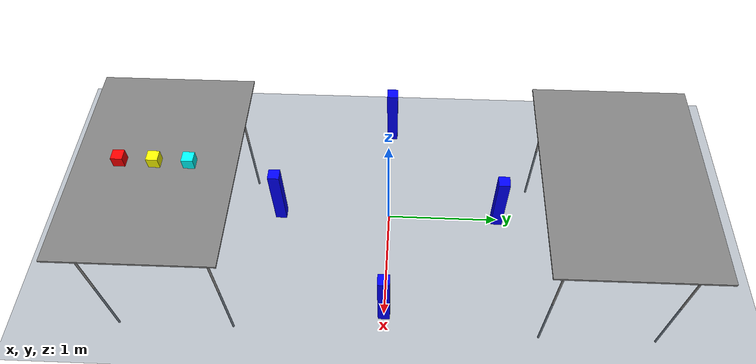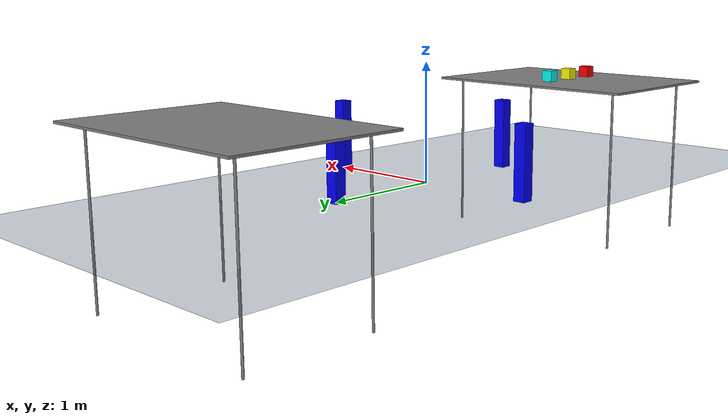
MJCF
<mujoco model="carryworld">
    <statistic center="0.3 0 0.4" extent="0.8"/>

    <visual>
        <headlight diffuse="0.6 0.6 0.6" ambient="0.1 0.1 0.1" specular="0 0 0"/>
        <rgba haze="0.15 0.25 0.35 1"/>
        <global azimuth="120" elevation="-20"/>
    </visual>

    <asset>
        <texture type="skybox" builtin="gradient" rgb1="0.3 0.5 0.7" rgb2="0 0 0" width="512" height="3072"/>
        <texture type="2d" name="groundplane" builtin="checker" mark="edge" rgb1="0.2 0.3 0.4" rgb2="0.1 0.2 0.3"
                 markrgb="0.8 0.8 0.8" width="300" height="300"/>
        <material name="groundplane" texture="groundplane" texuniform="true" texrepeat="5 5" reflectance="0.2"/>

    </asset>

    <worldbody>
        <light pos="0 0 1.5" dir="0 0 -1" directional="true"/>
        <geom name="floor" size="0 0 0.05" type="plane" material="groundplane"/>

        <body name="table_left" pos="0.0 -2 0">
            <geom name="table_left_top" type="box" size="1 .7 .01" pos="0 0 .7"/>
            <geom name="table_left_leg_1" type="cylinder" size=".01 .7" pos=".85 -.55 -.0" euler="0 0 0"/>
            <geom name="table_left_leg_2" type="cylinder" size=".01 .7" pos=".85 .55 -.0" euler="0 0 0"/>
            <geom name="table_left_leg_3" type="cylinder" size=".01 .7" pos="-.85 -.55 -.0" euler="0 0 0"/>
            <geom name="table_left_leg_4" type="cylinder" size=".01 .7" pos="-.85 .55 -.0" euler="0 0 0"/>
        </body>

        <body name="table_right" pos="0 2 0">
            <geom name="table_right_top" type="box" size="1 .7 .01" pos="0 0 .7"/>
            <geom name="table_right_leg_1" type="cylinder" size=".01 .7" pos=".85 -.55 -.0" euler="0 0 0"/>
            <geom name="table_right_leg_2" type="cylinder" size=".01 .7" pos=".85 .55 -.0" euler="0 0 0"/>
            <geom name="table_right_leg_3" type="cylinder" size=".01 .7" pos="-.85 -.55 -.0" euler="0 0 0"/>
            <geom name="table_right_leg_4" type="cylinder" size=".01 .7" pos="-.85 .55 -.0" euler="0 0 0"/>
        </body>

        <body name="obstacle_0" pos="1 0 .3" quat="0.70710678 0. 0. -0.70710678">
            <freejoint/>
            <geom type="box" size=".05 .05 .3" rgba="0 0 1 1"/>
        </body>

        <body name="obstacle_1" pos="0 1 0.3" quat="0.70710678 0. 0. -0.70710678">
            <freejoint/>
            <geom type="box" size=".05 .05 .3" rgba="0 0 1 1"/>
        </body>

        <body name="obstacle_2" pos="-1 0 0.3" quat="0.70710678 0. 0. -0.70710678">
            <freejoint/>
            <geom type="box" size=".05 .05 .3" rgba="0 0 1 1"/>
        </body>

        <body name="obstacle_3" pos="0 -1 0.3" quat="0.70710678 0. 0. -0.70710678">
            <freejoint/>
            <geom type="box" size=".05 .05 .3" rgba="0 0 1 1"/>
        </body>

        <body name="pick_object_yellow" pos="0 -2 0.76">
            <freejoint/>
            <geom type="box" size=".05 .05 .05" rgba="1 1 0 1"/>
        </body>

        <body name="pick_object_red" pos="0 -2.3 0.76">
            <freejoint/>
            <geom type="box" size=".05 .05 .05" rgba="1 0 0 1"/>
        </body>

        <body name="pick_object_cyan" pos="0 -1.7 0.76">
            <freejoint/>
            <geom type="box" size=".05 .05 .05" rgba="0 1 1 1"/>
        </body>

    </worldbody>

</mujoco>
